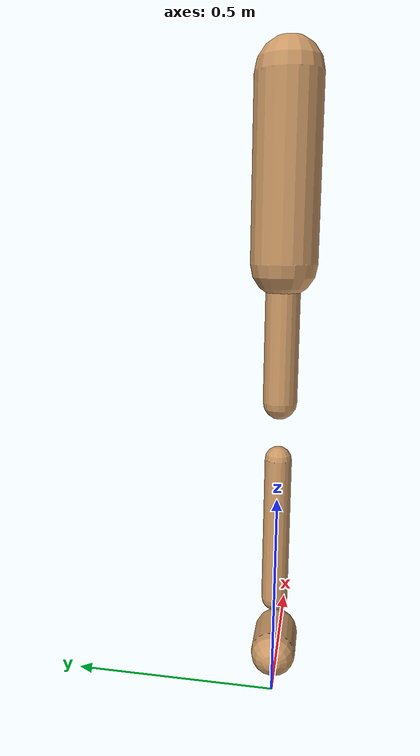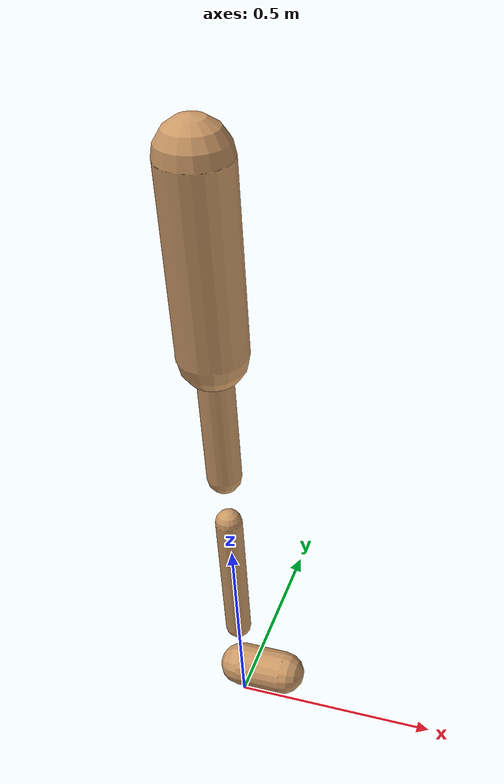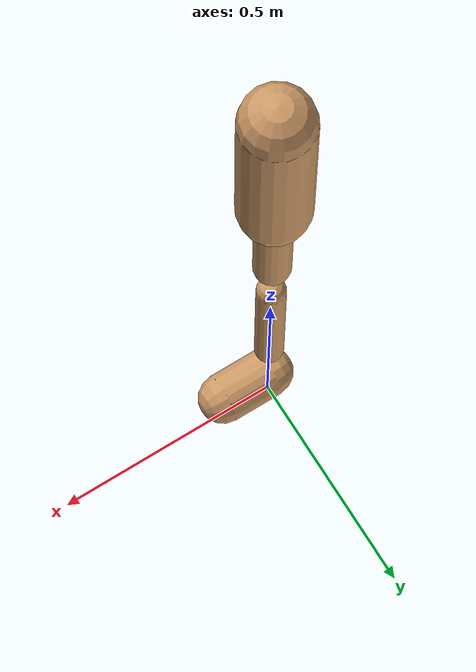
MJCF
<mujoco model="walker2d">
  <compiler angle="degree" coordinate="global" inertiafromgeom="true" />
  <default>
    <joint armature="0.01" damping=".1" limited="true" />
    <geom conaffinity="0" condim="3" contype="1" density="1000" friction="0.8 .1 .1" rgba="0.8 0.6 .4 1" />
  </default>
  <option integrator="RK4" timestep="0.002" />
  <worldbody>

    <body name="torso" pos="0 0 -0.2874016398289963">
      <joint armature="0" axis="1 0 0" damping="0" limited="false" name="ignorex" pos="0 0 0" stiffness="0" type="slide" />
      <joint armature="0" axis="0 0 1" damping="0" limited="false" name="ignorez" pos="0 0 0" ref="1.25" stiffness="0" type="slide" />
      <joint armature="0" axis="0 1 0" damping="0" limited="false" name="ignorey" pos="0 0 0" stiffness="0" type="hinge" />
      <geom fromto="0 0 1.45 0 0 1.05" name="torso_geom" size="0.07469399883851939" type="capsule" />
      <body name="thigh">
        <joint axis="0 -1 0" name="thigh_joint" pos="0 0 1.05" range="-150 0" type="hinge" />
        <geom fromto="0.0 0.0 1.05 0.0 0.0 0.7361376188663666" name="thigh_geom" size="0.03875681844161297" type="capsule" />
        <body name="leg" pos="0.0 0.0 0.13613761886636666">
          <joint axis="0 -1 0" name="leg_joint" pos="0 0 0.6" range="-150 0" type="hinge" />
          <geom fromto="0.0 0.0 0.6 0.0 0.0 0.2512640209626296" name="leg_geom" size="0.03100545475329037" type="capsule" />
          <body name="foot" pos="0.0 0.0 0.15126402096262961">
            <joint axis="0 -1 0" name="foot_joint" pos="0 0 0.1" range="-45 45" type="hinge" />
            <geom fromto="0.0 0.0 0.1 0.11197996520120271 0.0 0.1" name="foot_geom" size="0.053719278367997725" type="capsule" />
          </body>
        </body>
      </body>

      <body name="thigh_left">
        <joint axis="0 -1 0" name="thigh_left_joint" pos="0 0 1.05" range="-150 0" type="hinge" />
        <geom fromto="0.0 0.0 1.05 0.0 0.0 0.7361376188663666" name="thigh_left_geom" rgba=".7 .3 .6 1" size="0.03875681844161297" type="capsule" />
        <body name="leg_left" pos="0.0 0.0 0.13613761886636666">
          <joint axis="0 -1 0" name="leg_left_joint" pos="0 0 0.6" range="-150 0" type="hinge" />
          <geom fromto="0.0 0.0 0.6 0.0 0.0 0.2512640209626296" name="leg_left_geom" rgba=".7 .3 .6 1" size="0.03100545475329037" type="capsule" />
          <body name="foot_left" pos="0.0 0.0 0.15126402096262961">
            <joint axis="0 -1 0" name="foot_left_joint" pos="0 0 0.1" range="-45 45" type="hinge" />
            <geom fromto="0.0 0.0 0.1 0.11197996520120271 0.0 0.1" name="foot_left_geom" rgba=".7 .3 .6 1" size="0.053719278367997725" type="capsule" />
          </body>
        </body>
      </body>
    </body>
  </worldbody>
  <actuator>

    <motor ctrllimited="true" ctrlrange="-1.0 1.0" gear="100" joint="thigh_joint" />
    <motor ctrllimited="true" ctrlrange="-1.0 1.0" gear="100" joint="leg_joint" />
    <motor ctrllimited="true" ctrlrange="-1.0 1.0" gear="100" joint="foot_joint" />
    <motor ctrllimited="true" ctrlrange="-1.0 1.0" gear="100" joint="thigh_left_joint" />
    <motor ctrllimited="true" ctrlrange="-1.0 1.0" gear="100" joint="leg_left_joint" />
    <motor ctrllimited="true" ctrlrange="-1.0 1.0" gear="100" joint="foot_left_joint" />

  </actuator>
</mujoco>
